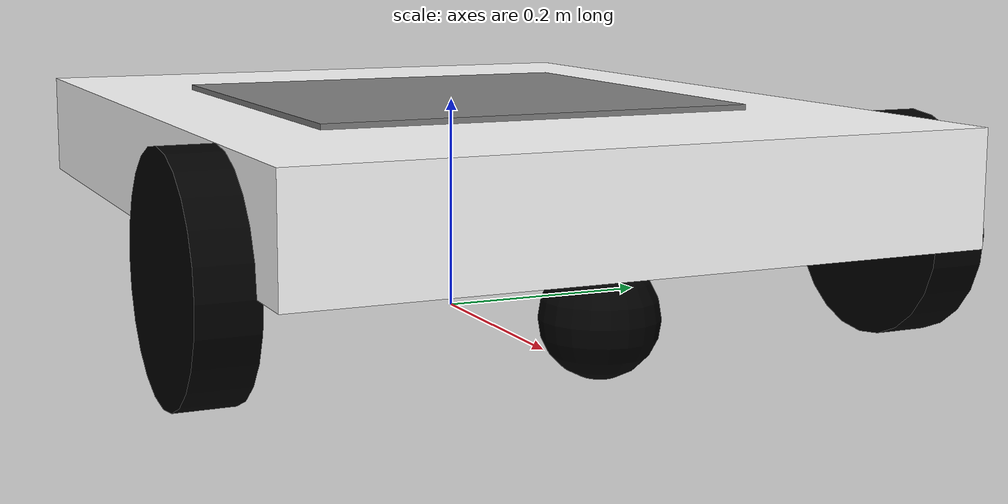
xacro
<?xml version="1.0"?>
<robot name="hybrid_robot" xmlns:xacro="http://www.ros.org/wiki/xacro">

    <xacro:property name="wheel_radius" value="0.1" />
    <xacro:property name="base_height" value="0.1" />
    <xacro:property name="base_mass" value="5.0" />
    <xacro:property name="base_length" value="0.8" />
    <xacro:property name="base_width" value="0.6" />
    <xacro:property name="wheel_width" value="0.05" />
    <xacro:property name="wheel_separation" value="0.64" />
    <xacro:property name="caster_radius" value="0.05" />
    <xacro:property name="caster_mass" value="0.1" />

    <xacro:macro name="default_inertial" params="mass">
        <inertial>
            <mass value="${mass}" />
            <inertia ixx="${0.08 * mass}" ixy="0.0" ixz="0.0" iyy="${0.08 * mass}" iyz="0.0" izz="${0.08 * mass}"/>
        </inertial>
    </xacro:macro>

    <link name="base_link">
        <visual>
            <origin xyz="0 0 ${wheel_radius + base_height/2}" rpy="0 0 0" />
            <geometry><box size="${base_length} ${base_width} ${base_height}" /></geometry>
            <material name="White"><color rgba="1 1 1 1"/></material>
        </visual>
        <collision>
            <origin xyz="0 0 ${wheel_radius + base_height/2}" rpy="0 0 0" />
            <geometry><box size="${base_length} ${base_width} ${base_height}" /></geometry>
        </collision>
        <xacro:default_inertial mass="${base_mass}"/>
    </link>

    <xacro:macro name="wheel_link" params="prefix parent_link x_offset y_offset">
        <link name="${prefix}_wheel_link">
            <visual>
                <origin xyz="0 0 0" rpy="1.5708 0 0" />
                <geometry><cylinder radius="${wheel_radius}" length="${wheel_width}" /></geometry>
                <material name="Black"><color rgba="0 0 0 1"/></material>
            </visual>
            <collision>
                <origin xyz="0 0 0" rpy="1.5708 0 0" />
                <geometry><cylinder radius="${wheel_radius}" length="${wheel_width}" /></geometry>
            </collision>
            <xacro:default_inertial mass="0.5" />
        </link>
        <gazebo reference="${prefix}_wheel_link">
            <material>Gazebo/Black</material>
            <mu1 value="1.0"/><mu2 value="1.0"/>
        </gazebo>
        <joint name="${prefix}_wheel_joint" type="continuous">
            <origin xyz="${x_offset} ${y_offset} ${wheel_radius}" rpy="0 0 0" />
            <parent link="${parent_link}" />
            <child link="${prefix}_wheel_link" />
            <axis xyz="0 1 0" />
        </joint>
    </xacro:macro>

    <xacro:wheel_link prefix="left" parent_link="base_link" x_offset="0.25" y_offset="${wheel_separation/2}" />
    <xacro:wheel_link prefix="right" parent_link="base_link" x_offset="0.25" y_offset="-${wheel_separation/2}" />

    <link name="caster_front_link">
        <visual><geometry><sphere radius="${caster_radius}"/></geometry><material name="Black"/></visual>
        <collision><geometry><sphere radius="${caster_radius}"/></geometry></collision>
        <xacro:default_inertial mass="${caster_mass}"/>
    </link>
    <joint name="caster_front_joint" type="fixed">
        <origin xyz="${base_length/2 - caster_radius*2} 0 ${caster_radius}" rpy="0 0 0"/>
        <parent link="base_link" /><child link="caster_front_link" />
    </joint>

    <link name="caster_rear_link">
        <visual><geometry><sphere radius="${caster_radius}"/></geometry><material name="Black"/></visual>
        <collision><geometry><sphere radius="${caster_radius}"/></geometry></collision>
        <xacro:default_inertial mass="${caster_mass}"/>
    </link>
    <joint name="caster_rear_joint" type="fixed">
        <origin xyz="${-base_length/2 + caster_radius*2} 0 ${caster_radius}" rpy="0 0 0"/>
        <parent link="base_link" /><child link="caster_rear_link" />
    </joint>

    <link name="landing_pad">
        <visual>
            <origin xyz="0 0 0" rpy="0 0 0" />
            <geometry><box size="0.4 0.4 0.01" /></geometry>
            <material name="Grey"><color rgba="0.5 0.5 0.5 1"/></material>
        </visual>
        <collision>
            <origin xyz="0 0 0" rpy="0 0 0" />
            <geometry><box size="0.4 0.4 0.01" /></geometry>
        </collision>
        <xacro:default_inertial mass="0.1"/>
    </link>

    <joint name="landing_pad_joint" type="fixed">
        <parent link="base_link" />
        <child link="landing_pad" />
        <origin xyz="0 0 0.2" rpy="0 0 0" />
    </joint>

    <gazebo reference="base_link">
        <material>Gazebo/Green</material>
    </gazebo>

</robot>
